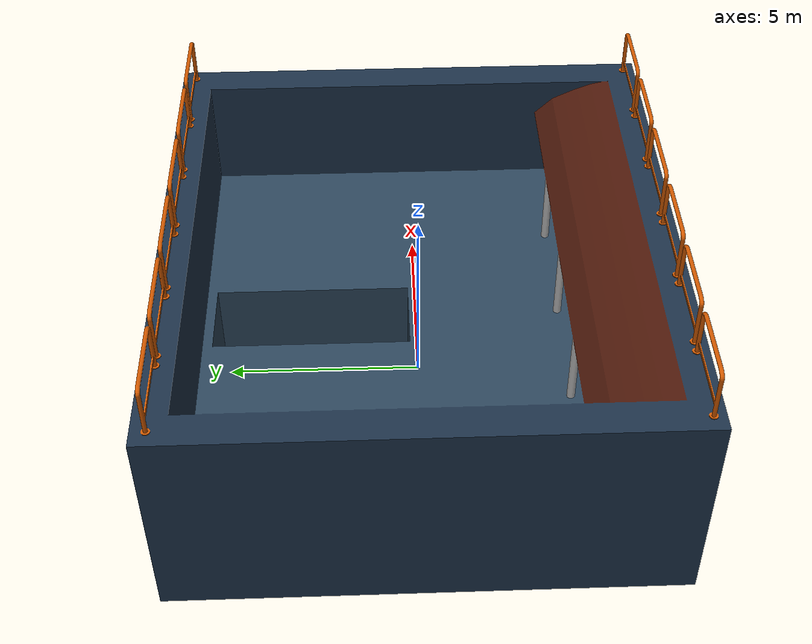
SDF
<sdf version="1.6">
 <world name="default">
  <light name="sun" type="directional">
   <pose>0 0 10 0 -0 0</pose>
   <diffuse>0.8 0.8 0.8 1</diffuse>
   <specular>0.2 0.2 0.2 1</specular>
   <attenuation>
    <range>1000</range>
    <constant>0.9</constant>
    <linear>0.01</linear>
    <quadratic>0.001</quadratic>
   </attenuation>
   <direction>-0.5 0.1 -0.9</direction>
  </light>
  <gravity>0 0 -9.8</gravity>
  <magnetic_field>6e-06 2.3e-05 -4.2e-05</magnetic_field>
  <atmosphere type="adiabatic"/>
  <physics name="default_physics" default="0" type="ode">
   <max_step_size>0.001</max_step_size>
   <real_time_factor>1</real_time_factor>
   <real_time_update_rate>1000</real_time_update_rate>
  </physics>
  <scene><ambient>0.4 0.4 0.4 1</ambient><background>0.7 0.7 0.7 1</background><shadows>1</shadows></scene>
  <audio><device>default</device></audio>
  <spherical_coordinates>
   <surface_model>EARTH_WGS84</surface_model>
   <latitude_deg>0</latitude_deg>
   <longitude_deg>0</longitude_deg>
   <elevation>0</elevation>
   <heading_deg>0</heading_deg>
  </spherical_coordinates>
  <model name="wavetank">
   <static>1</static>
   <link name="wavetank_link">
    <visual name="seafloor">
     <geometry><mesh><uri>model://wavetank/meshes/wavetank.dae</uri><scale>1 1 1</scale></mesh></geometry>
    </visual>
    <collision name="seafloor">
     <geometry><mesh><uri>model://wavetank/meshes/wavetank.dae</uri><scale>1 1 1</scale></mesh></geometry>
    </collision>
   </link>
  </model>
 </world>
</sdf>
